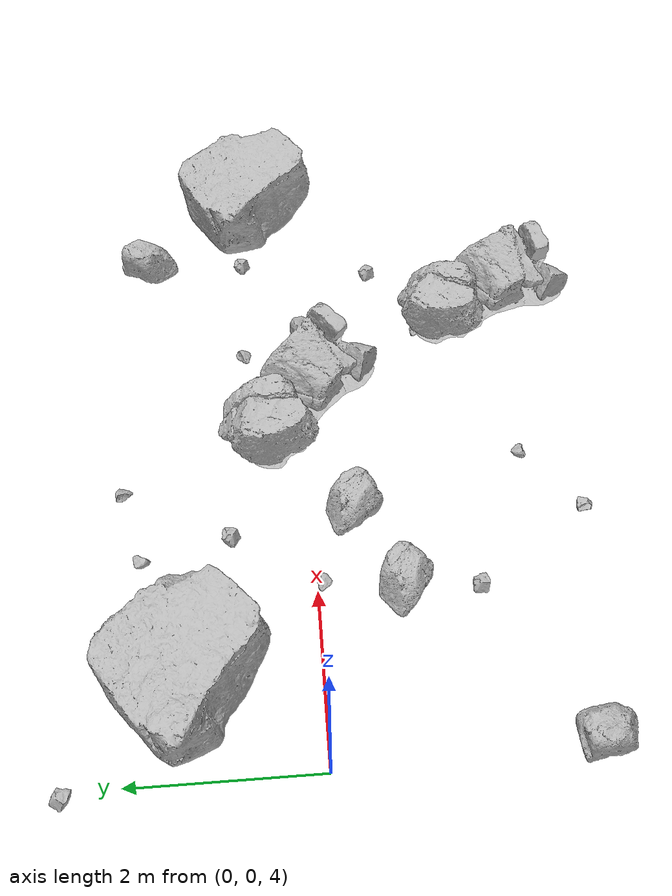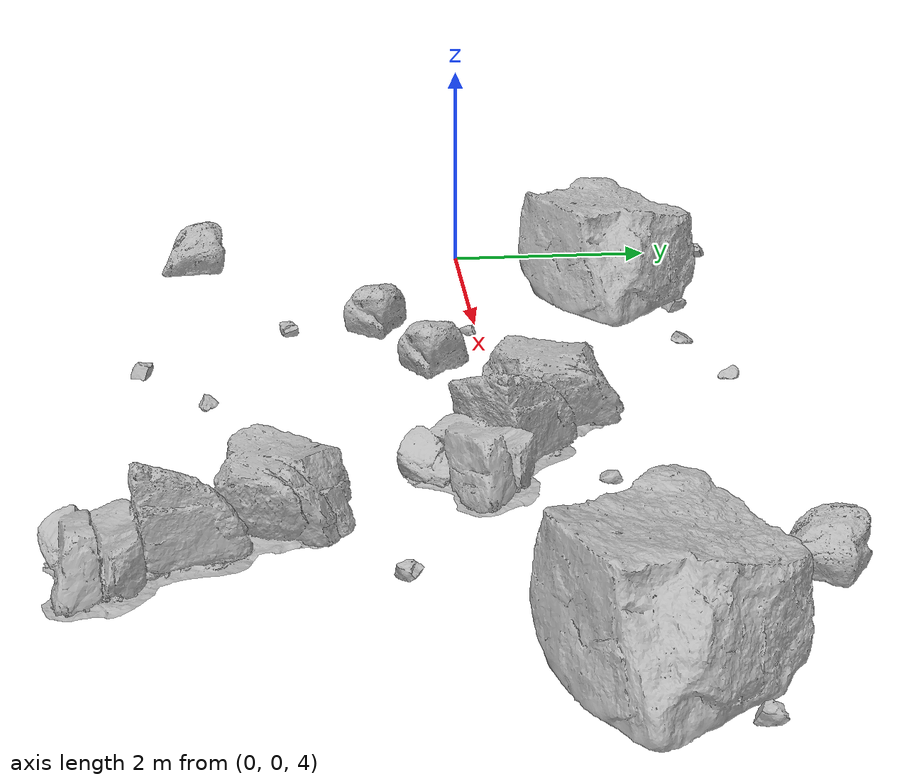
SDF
<sdf version="1.7">
 <world name="marsyard">
  <model name="Rock_32">
   <static>true</static>
   <pose>0.1189 -2.7470 4.0000 0.0000 0.0000 2.7224</pose>
   <link name="link">
    <visual name="visual">
     <geometry><mesh><uri>package://rock_generator/rocks_ws/rock_3/meshes/rock_3.stl</uri></mesh></geometry>
    </visual>
    <collision name="collision">
     <geometry><mesh><uri>package://rock_generator/rocks_ws/rock_3/meshes/rock_3.stl</uri></mesh></geometry>
    </collision>
   </link>
  </model>
  <model name="Rock_38">
   <static>true</static>
   <pose>2.5234 1.8988 4.0000 0.0000 0.0000 0.5487</pose>
   <link name="link">
    <visual name="visual">
     <geometry><mesh><uri>package://rock_generator/rocks_ws/rock_7/meshes/rock_7.stl</uri></mesh></geometry>
    </visual>
    <collision name="collision">
     <geometry><mesh><uri>package://rock_generator/rocks_ws/rock_7/meshes/rock_7.stl</uri></mesh></geometry>
    </collision>
   </link>
  </model>
  <model name="Rock_41">
   <static>true</static>
   <pose>1.0080 1.3061 4.0000 0.0000 0.0000 1.4917</pose>
   <link name="link">
    <visual name="visual">
     <geometry><mesh><uri>package://rock_generator/rocks_ws/rock_1/meshes/rock_1.stl</uri></mesh></geometry>
    </visual>
    <collision name="collision">
     <geometry><mesh><uri>package://rock_generator/rocks_ws/rock_1/meshes/rock_1.stl</uri></mesh></geometry>
    </collision>
   </link>
  </model>
  <model name="Rock_82">
   <static>true</static>
   <pose>3.7152 -2.4698 4.0000 0.0000 0.0000 -0.4432</pose>
   <link name="link">
    <visual name="visual">
     <geometry><mesh><uri>package://rock_generator/rocks_ws/rock_7/meshes/rock_7.stl</uri></mesh></geometry>
    </visual>
    <collision name="collision">
     <geometry><mesh><uri>package://rock_generator/rocks_ws/rock_7/meshes/rock_7.stl</uri></mesh></geometry>
    </collision>
   </link>
  </model>
  <model name="Rock_91">
   <static>true</static>
   <pose>3.0340 -0.4156 4.0000 0.0000 0.0000 0.0920</pose>
   <link name="link">
    <visual name="visual">
     <geometry><mesh><uri>package://rock_generator/rocks_ws/rock_3/meshes/rock_3.stl</uri></mesh></geometry>
    </visual>
    <collision name="collision">
     <geometry><mesh><uri>package://rock_generator/rocks_ws/rock_3/meshes/rock_3.stl</uri></mesh></geometry>
    </collision>
   </link>
  </model>
  <model name="Rock_105">
   <static>true</static>
   <pose>5.4657 0.7225 4.0000 0.0000 0.0000 -3.0356</pose>
   <link name="link">
    <visual name="visual">
     <geometry><mesh><uri>package://rock_generator/rocks_ws/rock_7/meshes/rock_7.stl</uri></mesh></geometry>
    </visual>
    <collision name="collision">
     <geometry><mesh><uri>package://rock_generator/rocks_ws/rock_7/meshes/rock_7.stl</uri></mesh></geometry>
    </collision>
   </link>
  </model>
  <model name="Rock_128">
   <static>true</static>
   <pose>4.1983 0.8187 4.0000 0.0000 0.0000 -2.3443</pose>
   <link name="link">
    <visual name="visual">
     <geometry><mesh><uri>package://rock_generator/rocks_ws/rock_7/meshes/rock_7.stl</uri></mesh></geometry>
    </visual>
    <collision name="collision">
     <geometry><mesh><uri>package://rock_generator/rocks_ws/rock_7/meshes/rock_7.stl</uri></mesh></geometry>
    </collision>
   </link>
  </model>
  <model name="Rock_129">
   <static>true</static>
   <pose>6.8617 -0.9495 4.0000 0.0000 0.0000 1.0533</pose>
   <link name="link">
    <visual name="visual">
     <geometry><mesh><uri>package://rock_generator/rocks_ws/rock_9/meshes/rock_9.stl</uri></mesh></geometry>
    </visual>
    <collision name="collision">
     <geometry><mesh><uri>package://rock_generator/rocks_ws/rock_9/meshes/rock_9.stl</uri></mesh></geometry>
    </collision>
   </link>
  </model>
  <model name="Rock_175">
   <static>true</static>
   <pose>-0.0500 2.5674 4.0000 0.0000 0.0000 -0.0842</pose>
   <link name="link">
    <visual name="visual">
     <geometry><mesh><uri>package://rock_generator/rocks_ws/rock_9/meshes/rock_9.stl</uri></mesh></geometry>
    </visual>
    <collision name="collision">
     <geometry><mesh><uri>package://rock_generator/rocks_ws/rock_9/meshes/rock_9.stl</uri></mesh></geometry>
    </collision>
   </link>
  </model>
  <model name="Rock_238">
   <static>true</static>
   <pose>1.9816 -1.7694 4.0000 0.0000 0.0000 0.5049</pose>
   <link name="link">
    <visual name="visual">
     <geometry><mesh><uri>package://rock_generator/rocks_ws/rock_9/meshes/rock_9.stl</uri></mesh></geometry>
    </visual>
    <collision name="collision">
     <geometry><mesh><uri>package://rock_generator/rocks_ws/rock_9/meshes/rock_9.stl</uri></mesh></geometry>
    </collision>
   </link>
  </model>
  <model name="Rock_240">
   <static>true</static>
   <pose>7.0581 1.9377 4.0000 0.0000 0.0000 2.0600</pose>
   <link name="link">
    <visual name="visual">
     <geometry><mesh><uri>package://rock_generator/rocks_ws/rock_3/meshes/rock_3.stl</uri></mesh></geometry>
    </visual>
    <collision name="collision">
     <geometry><mesh><uri>package://rock_generator/rocks_ws/rock_3/meshes/rock_3.stl</uri></mesh></geometry>
    </collision>
   </link>
  </model>
  <model name="Rock_254">
   <static>true</static>
   <pose>8.8637 1.1223 4.0000 0.0000 0.0000 1.6572</pose>
   <link name="link">
    <visual name="visual">
     <geometry><mesh><uri>package://rock_generator/rocks_ws/rock_9/meshes/rock_9.stl</uri></mesh></geometry>
    </visual>
    <collision name="collision">
     <geometry><mesh><uri>package://rock_generator/rocks_ws/rock_9/meshes/rock_9.stl</uri></mesh></geometry>
    </collision>
   </link>
  </model>
  <model name="Rock_273">
   <static>true</static>
   <pose>2.9115 -3.0715 4.0000 0.0000 0.0000 -3.0267</pose>
   <link name="link">
    <visual name="visual">
     <geometry><mesh><uri>package://rock_generator/rocks_ws/rock_9/meshes/rock_9.stl</uri></mesh></geometry>
    </visual>
    <collision name="collision">
     <geometry><mesh><uri>package://rock_generator/rocks_ws/rock_9/meshes/rock_9.stl</uri></mesh></geometry>
    </collision>
   </link>
  </model>
  <model name="Rock_276">
   <static>true</static>
   <pose>4.7399 0.0846 4.0000 0.0000 0.0000 -0.5664</pose>
   <link name="link">
    <visual name="visual">
     <geometry><mesh><uri>package://rock_generator/rocks_ws/rock_2/meshes/rock_2.stl</uri></mesh></geometry>
    </visual>
    <collision name="collision">
     <geometry><mesh><uri>package://rock_generator/rocks_ws/rock_2/meshes/rock_2.stl</uri></mesh></geometry>
    </collision>
   </link>
  </model>
  <model name="Rock_278">
   <static>true</static>
   <pose>3.4374 2.1484 4.0000 0.0000 0.0000 -1.6182</pose>
   <link name="link">
    <visual name="visual">
     <geometry><mesh><uri>package://rock_generator/rocks_ws/rock_7/meshes/rock_7.stl</uri></mesh></geometry>
    </visual>
    <collision name="collision">
     <geometry><mesh><uri>package://rock_generator/rocks_ws/rock_7/meshes/rock_7.stl</uri></mesh></geometry>
    </collision>
   </link>
  </model>
  <model name="Rock_329">
   <static>true</static>
   <pose>8.0451 0.5596 4.0000 0.0000 0.0000 1.3093</pose>
   <link name="link">
    <visual name="visual">
     <geometry><mesh><uri>package://rock_generator/rocks_ws/rock_1/meshes/rock_1.stl</uri></mesh></geometry>
    </visual>
    <collision name="collision">
     <geometry><mesh><uri>package://rock_generator/rocks_ws/rock_1/meshes/rock_1.stl</uri></mesh></geometry>
    </collision>
   </link>
  </model>
  <model name="Rock_343">
   <static>true</static>
   <pose>2.1362 -0.0695 4.0000 0.0000 0.0000 2.5515</pose>
   <link name="link">
    <visual name="visual">
     <geometry><mesh><uri>package://rock_generator/rocks_ws/rock_7/meshes/rock_7.stl</uri></mesh></geometry>
    </visual>
    <collision name="collision">
     <geometry><mesh><uri>package://rock_generator/rocks_ws/rock_7/meshes/rock_7.stl</uri></mesh></geometry>
    </collision>
   </link>
  </model>
  <model name="Rock_374">
   <static>true</static>
   <pose>1.5906 2.0205 4.0000 0.0000 0.0000 2.4091</pose>
   <link name="link">
    <visual name="visual">
     <geometry><mesh><uri>package://rock_generator/rocks_ws/rock_9/meshes/rock_9.stl</uri></mesh></geometry>
    </visual>
    <collision name="collision">
     <geometry><mesh><uri>package://rock_generator/rocks_ws/rock_9/meshes/rock_9.stl</uri></mesh></geometry>
    </collision>
   </link>
  </model>
  <model name="Rock_389">
   <static>true</static>
   <pose>6.3338 -2.4029 4.0000 0.0000 0.0000 -1.0272</pose>
   <link name="link">
    <visual name="visual">
     <geometry><mesh><uri>package://rock_generator/rocks_ws/rock_2/meshes/rock_2.stl</uri></mesh></geometry>
    </visual>
    <collision name="collision">
     <geometry><mesh><uri>package://rock_generator/rocks_ws/rock_2/meshes/rock_2.stl</uri></mesh></geometry>
    </collision>
   </link>
  </model>
  <model name="Rock_394">
   <static>true</static>
   <pose>7.1175 0.7187 4.0000 0.0000 0.0000 1.4750</pose>
   <link name="link">
    <visual name="visual">
     <geometry><mesh><uri>package://rock_generator/rocks_ws/rock_9/meshes/rock_9.stl</uri></mesh></geometry>
    </visual>
    <collision name="collision">
     <geometry><mesh><uri>package://rock_generator/rocks_ws/rock_9/meshes/rock_9.stl</uri></mesh></geometry>
    </collision>
   </link>
  </model>
  <model name="Rock_432">
   <static>true</static>
   <pose>5.7807 -1.4788 4.0000 0.0000 0.0000 2.4213</pose>
   <link name="link">
    <visual name="visual">
     <geometry><mesh><uri>package://rock_generator/rocks_ws/rock_7/meshes/rock_7.stl</uri></mesh></geometry>
    </visual>
    <collision name="collision">
     <geometry><mesh><uri>package://rock_generator/rocks_ws/rock_7/meshes/rock_7.stl</uri></mesh></geometry>
    </collision>
   </link>
  </model>
  <model name="Rock_468">
   <static>true</static>
   <pose>2.7864 0.9221 4.0000 0.0000 0.0000 1.5462</pose>
   <link name="link">
    <visual name="visual">
     <geometry><mesh><uri>package://rock_generator/rocks_ws/rock_9/meshes/rock_9.stl</uri></mesh></geometry>
    </visual>
    <collision name="collision">
     <geometry><mesh><uri>package://rock_generator/rocks_ws/rock_9/meshes/rock_9.stl</uri></mesh></geometry>
    </collision>
   </link>
  </model>
  <model name="Rock_500">
   <static>true</static>
   <pose>1.9925 -0.8879 4.0000 0.0000 0.0000 0.4628</pose>
   <link name="link">
    <visual name="visual">
     <geometry><mesh><uri>package://rock_generator/rocks_ws/rock_3/meshes/rock_3.stl</uri></mesh></geometry>
    </visual>
    <collision name="collision">
     <geometry><mesh><uri>package://rock_generator/rocks_ws/rock_3/meshes/rock_3.stl</uri></mesh></geometry>
    </collision>
   </link>
  </model>
 </world>
</sdf>
